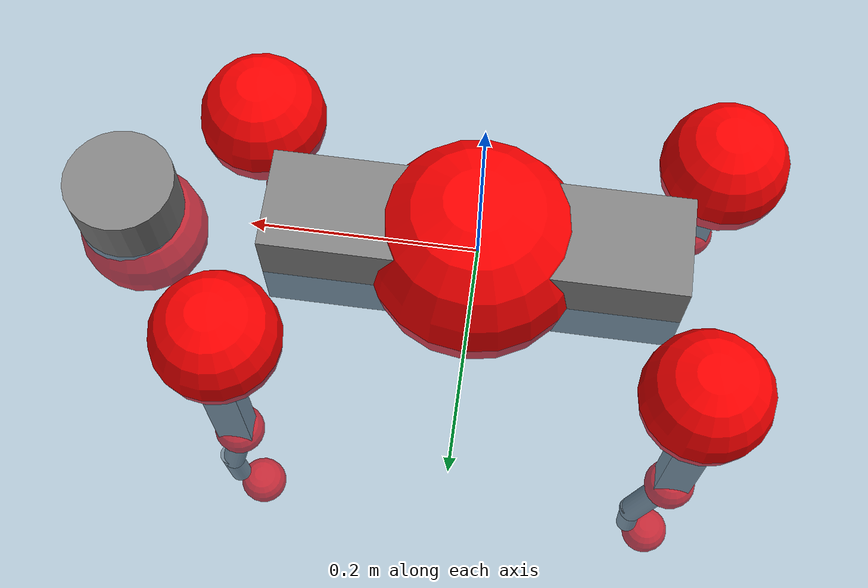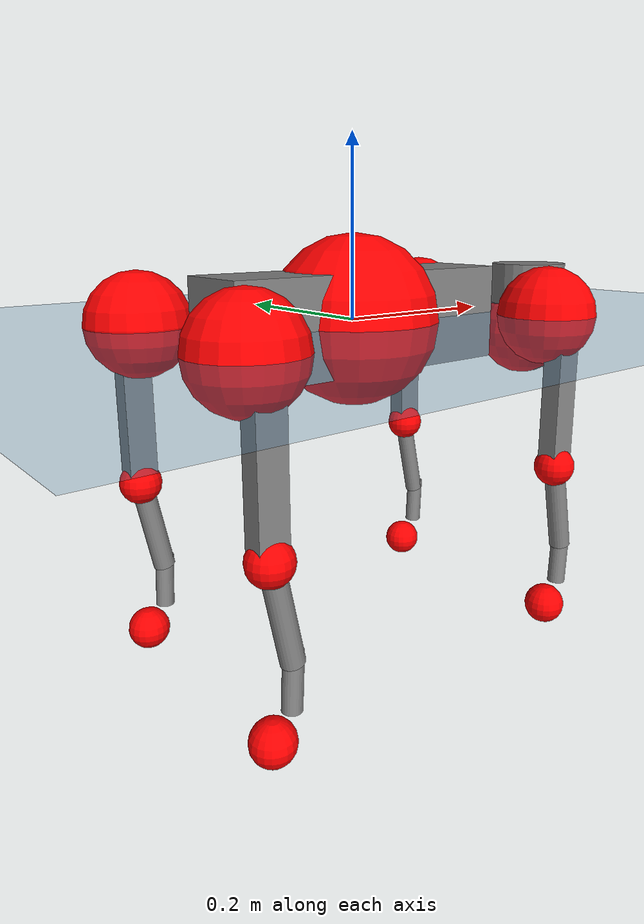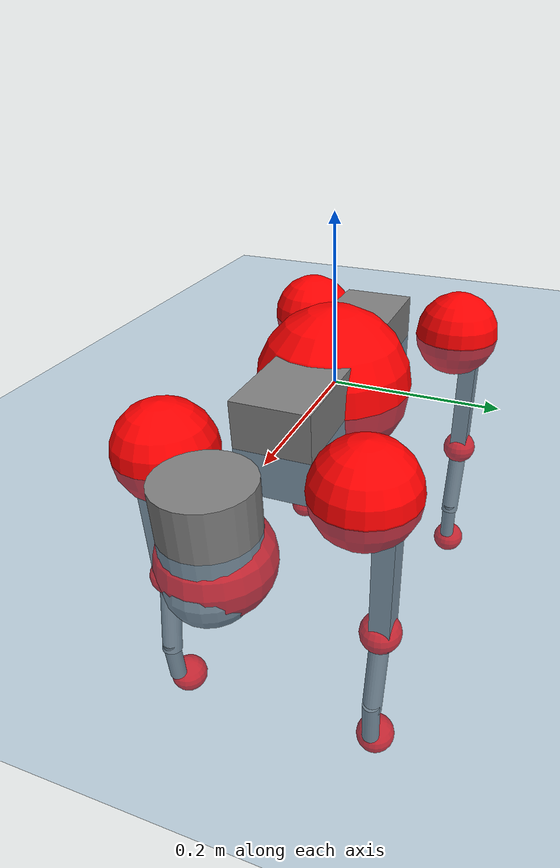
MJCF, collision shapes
<mujoco model="go2">
  <compiler angle="radian" assetdir="assets" balanceinertia="true" inertiafromgeom="false"/>

  <option timestep="0.005" density="1.2" viscosity="2e-05"/>

  <size nkey="1"/>

  <visual>
    <quality shadowsize="8192"/>
    <map shadowclip="0.5"/>
  </visual>

  <default>
    <default class="/">
      <geom contype="0" conaffinity="0" group="1" solref="-1000 -80"/>
      <site size="0.01 0.005 0.005" group="5"/>
      <general forcelimited="true" biastype="affine" gainprm="20" biasprm="0 -20 -0.5"/>
      <default class="go2">
        <joint armature="0.01" damping="0.01" frictionloss="0.2"/>
        <geom condim="1" margin="0.001"/>
        <default class="visual">
          <geom type="mesh" group="2"/>
        </default>
        <default class="collision">
          <geom group="3"/>
          <default class="foot">
            <geom size="0.022 0 0" condim="6" priority="1" friction="0.8 0.02 0.01" solimp="0.015 1 0.022"/>
          </default>
        </default>
        <default class="reward_collision_sphere">
          <geom group="5" rgba="1 0 0 1"/>
        </default>
      </default>
    </default>
  </default>

  <asset>
    <texture type="skybox" colorspace="auto" name="//unnamed_texture_0" builtin="gradient" rgb1="0.95 0.95 0.95" rgb2="0.95 0.95 0.95" width="100" height="600"/>
    <texture type="2d" colorspace="auto" name="texplane" builtin="checker" rgb1="0.345 0.575 0.748" rgb2="0.345 0.575 0.748" markrgb="1 1 1" width="512" height="512"/>
    <material name="MatPlane" class="/" texture="texplane" texuniform="true" texrepeat="2 2" specular="0.9"/>
    <material name="metal" class="/" rgba="0.9 0.95 0.95 1"/>
    <material name="black" class="/" rgba="0 0 0 1"/>
    <material name="white" class="/"/>
    <material name="gray" class="/" rgba="0.671705 0.692426 0.77427 1"/>
    <mesh name="base_0" class="/" file="base_0.obj"/>
    <mesh name="base_1" class="/" file="base_1.obj"/>
    <mesh name="base_2" class="/" file="base_2.obj"/>
    <mesh name="base_3" class="/" file="base_3.obj"/>
    <mesh name="base_4" class="/" file="base_4.obj"/>
    <mesh name="hip_0" class="/" file="hip_0.obj"/>
    <mesh name="hip_1" class="/" file="hip_1.obj"/>
    <mesh name="thigh_0" class="/" file="thigh_0.obj"/>
    <mesh name="thigh_1" class="/" file="thigh_1.obj"/>
    <mesh name="thigh_mirror_0" class="/" file="thigh_mirror_0.obj"/>
    <mesh name="thigh_mirror_1" class="/" file="thigh_mirror_1.obj"/>
    <mesh name="calf_0" class="/" file="calf_0.obj"/>
    <mesh name="calf_1" class="/" file="calf_1.obj"/>
    <mesh name="calf_mirror_0" class="/" file="calf_mirror_0.obj"/>
    <mesh name="calf_mirror_1" class="/" file="calf_mirror_1.obj"/>
    <mesh name="foot" class="/" file="foot.obj"/>
  </asset>

  <worldbody>
    <geom name="floor" class="/" size="100 100 0.125" type="plane" group="0" material="MatPlane"/>
    <light name="toplight_shadow" class="/" pos="0 0 5" dir="0.0990148 0.0990148 -0.990148" type="directional" ambient="0.04 0.04 0.04" diffuse="0.55 0.55 0.55" specular="0.12 0.12 0.12"/>
    <light name="toplight_fill" class="/" pos="0 0 5" dir="0.0990148 0.0990148 -0.990148" type="directional" castshadow="false" ambient="0.04 0.04 0.04" diffuse="0.3 0.3 0.3" specular="0.08 0.08 0.08"/>
    <body name="trunk" childclass="go2" pos="0.00137048 -0.000991216 -0.000261767" quat="1 6.88665e-05 7.87457e-05 -5.01426e-05">
      <inertial pos="0.0227378 -0.00049329 -0.0046882" quat="-0.00255293 0.715406 -0.00370408 0.698694" mass="6.03506" diaginertia="0.159601 0.07348 0.0114007"/>
      <joint name="//unnamed_joint_0" type="free" armature="0" damping="0" frictionloss="0"/>
      <geom name="//unnamed_geom_1" class="visual" material="black" mesh="base_0"/>
      <geom name="//unnamed_geom_2" class="visual" material="black" mesh="base_1"/>
      <geom name="//unnamed_geom_3" class="visual" material="black" mesh="base_2"/>
      <geom name="//unnamed_geom_4" class="visual" material="white" mesh="base_3"/>
      <geom name="//unnamed_geom_5" class="visual" material="gray" mesh="base_4"/>
      <geom name="trunk_1" class="collision" size="0.180435 0.0448449 0.0546773" type="box"/>
      <geom name="trunk_2" class="collision" size="0.0479625 0.0431663" pos="0.307 0 0.00857771" type="cylinder"/>
      <geom name="trunk_3" class="collision" size="0.0450848" pos="0.315617 0 -0.0514662"/>
      <geom name="//unnamed_geom_9" class="reward_collision_sphere" size="0.095925"/>
      <geom name="//unnamed_geom_10" class="reward_collision_sphere" size="0.057555" pos="0.301614 0 -0.0385997"/>
      <site name="imu" pos="-0.0299469 -0.00259158 0.0267417" size="0.0095925"/>
      <camera name="track" pos="0 -1.88557 0" quat="0.707107 0.707107 0 0" mode="trackcom"/>
      <camera name="ego_camera" pos="0.336084 0 0.0385997" quat="-0.5 -0.5 0.5 0.5"/>
      <body name="FL_hip" pos="0.208455 0.044935 0.00100194" quat="1 -0.00033573 -0.0003248 -3.9595e-05">
        <inertial pos="-0.0073115 0.0029525 0.000148119" quat="0.496167 0.499235 0.50575 0.498799" mass="0.600312" diaginertia="0.00128499 0.000444286 0.000222014"/>
        <joint name="FL_hip_joint" pos="0 0 0" axis="0.999901 0.00964019 -0.010238" range="-1.05503 1.04995" armature="0.00866421" damping="0.00720547" frictionloss="0.183025"/>
        <geom name="//unnamed_geom_11" class="visual" material="metal" mesh="hip_0"/>
        <geom name="//unnamed_geom_12" class="visual" material="gray" mesh="hip_1"/>
        <geom name="//unnamed_geom_13" class="collision" size="0.0441255 0.019185" pos="0 0.075423 0" quat="0.707107 0.707107 0 0" type="cylinder"/>
        <geom name="//unnamed_geom_14" class="reward_collision_sphere" size="0.057555" pos="0 0.0659951 0"/>
        <body name="FL_thigh" pos="-0.000355685 0.0908105 0.00120151" quat="1 0.000183267 8.56063e-05 0.000465647">
          <inertial pos="-0.00463059 -0.0209846 -0.029915" quat="0.82693 0.0867587 -0.0204539 0.555194" mass="1.02704" diaginertia="0.00868687 0.00439406 0.000414125"/>
          <joint name="FL_thigh_joint" pos="0 0 0" axis="-0.00346984 0.999985 0.00431026" range="-1.59063 3.49075" armature="0.0100533" damping="0.00651426" frictionloss="0.197893"/>
          <geom name="//unnamed_geom_15" class="visual" material="metal" mesh="thigh_0"/>
          <geom name="//unnamed_geom_16" class="visual" material="gray" mesh="thigh_1"/>
          <geom name="//unnamed_geom_17" class="collision" size="0.10216 0.0117508 0.0163073" pos="0 0 -0.0913526" quat="0.707107 0 0.707107 0" type="box"/>
          <body name="FL_calf" pos="-0.000400145 -0.00250717 -0.182924" quat="1 2.41143e-05 -1.38519e-05 -3.99883e-05">
            <inertial pos="0.00606704 -0.000629596 -0.121029" quat="0.705672 -0.00321501 -0.00415948 0.708519" mass="0.210392" diaginertia="0.00213626 0.00108627 2.42163e-05"/>
            <joint name="FL_calf_joint" pos="0 0 0" axis="0.000253021 0.999939 0.0110459" stiffness="0.00273738" range="-2.7211 -0.84548" armature="0.00967455" damping="0.00351032" frictionloss="0.196492"/>
            <geom name="//unnamed_geom_18" class="visual" material="gray" mesh="calf_0"/>
            <geom name="//unnamed_geom_19" class="visual" material="black" mesh="calf_1"/>
            <geom name="FL_calf0" class="collision" size="0.011511 0.057555" pos="0.00861754 0 -0.0514662" quat="0.994493 0 -0.104807 0" type="cylinder"/>
            <geom name="//unnamed_geom_21" class="collision" size="0.0105518 0.0311756" pos="0.0215439 0 -0.12695" quat="0.999688 0 0.0249974 0" type="cylinder"/>
            <geom name="//unnamed_geom_22" class="visual" pos="0 0 -0.182705" quat="1 0 0 0" material="black" mesh="foot"/>
            <geom name="FL_foot" class="foot" size="0.0181066" pos="-0.00215439 0 -0.182705"/>
            <geom name="//unnamed_geom_24" class="reward_collision_sphere" size="0.0239813"/>
            <geom name="//unnamed_geom_25" class="reward_collision_sphere" size="0.0239813" pos="-0.00215439 0 -0.182705"/>
            <site name="FL_foot" class="foot" pos="-0.00215439 0 -0.182705" size="0.0095925"/>
          </body>
        </body>
      </body>
      <body name="FR_hip" pos="0.207111 -0.0413022 -0.0011341" quat="1 -3.26794e-05 4.4955e-05 -0.000152931">
        <inertial pos="-0.00357514 -0.00234131 -0.00234189" quat="0.497017 0.506376 0.498222 0.49833" mass="0.615889" diaginertia="0.00130995 0.000455232 0.000228075"/>
        <joint name="FR_hip_joint" pos="0 0 0" axis="0.999991 -0.00250395 -0.00355155" stiffness="0.00531437" range="-1.08318 1.05971" armature="0.00971995" damping="0.0135639" frictionloss="0.18283"/>
        <geom name="//unnamed_geom_26" class="visual" pos="0 7.40629e-10 3.17671e-08" quat="4.63268e-05 1 0 0" material="metal" mesh="hip_0"/>
        <geom name="//unnamed_geom_27" class="visual" pos="0 1.20065e-09 -7.85722e-08" quat="4.63268e-05 1 0 0" material="gray" mesh="hip_1"/>
        <geom name="//unnamed_geom_28" class="collision" size="0.0441255 0.019185" pos="0 -0.075423 0" quat="0.707107 0.707107 0 0" type="cylinder"/>
        <geom name="//unnamed_geom_29" class="reward_collision_sphere" size="0.057555" pos="0 -0.0659951 0"/>
        <body name="FR_thigh" pos="0.000231859 -0.0905657 -9.34783e-05" quat="1 5.72113e-05 9.94898e-06 -8.39433e-05">
          <inertial pos="-0.00273232 0.0234267 -0.0285172" quat="0.551296 -0.020376 0.0841673 0.829803" mass="1.00719" diaginertia="0.00856476 0.00432861 0.000404374"/>
          <joint name="FR_thigh_joint" pos="0 0 0" axis="-0.000617145 -0.999998 0.00173169" range="-3.50271 1.5506" armature="0.00986626" damping="0.0111554" frictionloss="0.193584"/>
          <geom name="//unnamed_geom_30" class="visual" material="metal" mesh="thigh_mirror_0"/>
          <geom name="//unnamed_geom_31" class="visual" material="gray" mesh="thigh_mirror_1"/>
          <geom name="//unnamed_geom_32" class="collision" size="0.10216 0.0117508 0.0163073" pos="0 0 -0.0913526" quat="0.707107 0 0.707107 0" type="box"/>
          <body name="FR_calf" pos="-0.000225454 -0.000929958 -0.181596" quat="1 -0.000664641 0.00068413 -0.000288335">
            <inertial pos="0.00908493 0.00101019 -0.120715" quat="0.703278 -0.00528127 0.000402865 0.710896" mass="0.209232" diaginertia="0.00212533 0.00109909 2.51552e-05"/>
            <joint name="FR_calf_joint" pos="0 0 0" axis="-0.00165447 -0.999998 0.000820644" stiffness="0.00096186" range="0.798948 2.71957" armature="0.00985549" damping="0.0167105" frictionloss="0.204056"/>
            <geom name="//unnamed_geom_33" class="visual" material="gray" mesh="calf_mirror_0"/>
            <geom name="//unnamed_geom_34" class="visual" material="black" mesh="calf_mirror_1"/>
            <geom name="FR_calf0" class="collision" size="0.0124703 0.057555" pos="0.0107719 0 -0.0514662" quat="0.995004 0 -0.0998334 0" type="cylinder"/>
            <geom name="//unnamed_geom_36" class="collision" size="0.0105518 0.0311756" pos="0.0215439 0 -0.12695" quat="0.999688 0 0.0249974 0" type="cylinder"/>
            <geom name="//unnamed_geom_37" class="visual" pos="0 0 -0.182705" quat="1 0 0 0" material="black" mesh="foot"/>
            <geom name="FR_foot" class="foot" size="0.021811" pos="-0.00215439 0 -0.182705"/>
            <geom name="//unnamed_geom_39" class="reward_collision_sphere" size="0.0239813"/>
            <geom name="//unnamed_geom_40" class="reward_collision_sphere" size="0.0239813" pos="-0.00215439 0 -0.182705"/>
            <site name="FR_foot" class="foot" pos="-0.00215439 0 -0.182705" size="0.0095925"/>
          </body>
        </body>
      </body>
      <body name="RL_hip" pos="-0.206227 0.0433867 0.000911284" quat="1 8.68832e-06 -8.05774e-06 -2.24084e-06">
        <inertial pos="0.00755576 1.9661e-06 1.52558e-05" quat="0.504333 0.501489 0.492668 0.501433" mass="0.603851" diaginertia="0.0012855 0.00044186 0.000219237"/>
        <joint name="RL_hip_joint" pos="0 0 0" axis="-0.999864 0.0117728 0.0115425" range="-1.04835 1.0268" armature="0.0096065" damping="0.00775304" frictionloss="0.200243"/>
        <geom name="//unnamed_geom_41" class="visual" pos="-1.91151e-09 0 -3.74701e-07" quat="4.63268e-05 0 1 0" material="metal" mesh="hip_0"/>
        <geom name="//unnamed_geom_42" class="visual" pos="-3.09879e-09 0 -3.32306e-07" quat="4.63268e-05 0 1 0" material="gray" mesh="hip_1"/>
        <geom name="//unnamed_geom_43" class="collision" size="0.0441255 0.019185" pos="0 0.075423 0" quat="0.707107 0.707107 0 0" type="cylinder"/>
        <geom name="//unnamed_geom_44" class="reward_collision_sphere" size="0.057555" pos="0 0.0659951 0"/>
        <body name="RL_thigh" pos="-0.000605543 0.0888218 0.000732197" quat="1 -0.000143407 0.000429549 0.000137656">
          <inertial pos="-0.00393239 -0.0189214 -0.0280366" quat="0.829652 0.0863542 -0.0220242 0.551122" mass="1.01927" diaginertia="0.00865889 0.00436722 0.00039802"/>
          <joint name="RL_thigh_joint" pos="0 0 0" axis="0.00555403 0.999983 0.00191057" range="-0.524723 4.52604" armature="0.0104063" damping="0.00467238" frictionloss="0.201594"/>
          <geom name="//unnamed_geom_45" class="visual" material="metal" mesh="thigh_0"/>
          <geom name="//unnamed_geom_46" class="visual" material="gray" mesh="thigh_1"/>
          <geom name="//unnamed_geom_47" class="collision" size="0.10216 0.0117508 0.0163073" pos="0 0 -0.0913526" quat="0.707107 0 0.707107 0" type="box"/>
          <body name="RL_calf" pos="0.000110359 0.000539153 -0.184727" quat="1 -3.55054e-05 4.11624e-05 -0.000986549">
            <inertial pos="0.00724409 -0.000388733 -0.118924" quat="0.710318 -0.00125277 -0.00194971 0.703877" mass="0.209309" diaginertia="0.00217382 0.00110562 2.46184e-05"/>
            <joint name="RL_calf_joint" pos="0 0 0" axis="0.000320546 1 -0.000394952" stiffness="0.00303556" range="-2.7233 -0.8327" armature="0.00953862" damping="0.00530967" frictionloss="0.18649"/>
            <geom name="//unnamed_geom_48" class="visual" material="gray" mesh="calf_0"/>
            <geom name="//unnamed_geom_49" class="visual" material="black" mesh="calf_1"/>
            <geom name="RL_calf0" class="collision" size="0.0124703 0.057555" pos="0.0107719 0 -0.0514662" quat="0.995004 0 -0.0998334 0" type="cylinder"/>
            <geom name="//unnamed_geom_51" class="collision" size="0.0105518 0.0311756" pos="0.0215439 0 -0.12695" quat="0.999688 0 0.0249974 0" type="cylinder"/>
            <geom name="//unnamed_geom_52" class="visual" pos="0 0 -0.182705" quat="1 0 0 0" material="black" mesh="foot"/>
            <geom name="RL_foot" class="foot" size="0.017928" pos="-0.00215439 0 -0.182705"/>
            <geom name="//unnamed_geom_54" class="reward_collision_sphere" size="0.0239813"/>
            <geom name="//unnamed_geom_55" class="reward_collision_sphere" size="0.0239813" pos="-0.00215439 0 -0.182705"/>
            <site name="RL_foot" class="foot" pos="-0.00215439 0 -0.182705" size="0.0095925"/>
          </body>
        </body>
      </body>
      <body name="RR_hip" pos="-0.210209 -0.044988 -0.000655489" quat="1 0.000153101 7.40061e-05 0.000398602">
        <inertial pos="0.00575652 -0.00255744 -0.000142822" quat="0.492714 0.495372 0.50014 0.511565" mass="0.597161" diaginertia="0.00126776 0.000441178 0.000221036"/>
        <joint name="RR_hip_joint" pos="0 0 0" axis="-0.999941 0.00264589 -0.0105306" stiffness="0.00336827" range="-1.04766 1.03297" armature="0.00991667" damping="0" frictionloss="0.189057"/>
        <geom name="//unnamed_geom_56" class="visual" pos="1.90686e-09 7.40629e-10 -4.06468e-07" quat="2.14617e-09 4.63268e-05 4.63268e-05 -1" material="metal" mesh="hip_0"/>
        <geom name="//unnamed_geom_57" class="visual" pos="3.1103e-09 1.20065e-09 -2.53734e-07" quat="2.14617e-09 4.63268e-05 4.63268e-05 -1" material="gray" mesh="hip_1"/>
        <geom name="//unnamed_geom_58" class="collision" size="0.0441255 0.019185" pos="0 -0.075423 0" quat="0.707107 0.707107 0 0" type="cylinder"/>
        <geom name="//unnamed_geom_59" class="reward_collision_sphere" size="0.057555" pos="0 -0.0659951 0"/>
        <body name="RR_thigh" pos="0.000403316 -0.0896929 0.000166374" quat="1 5.95699e-05 0.000191595 0.00023247">
          <inertial pos="-0.0039656 0.0208954 -0.028709" quat="0.54655 -0.0128957 0.0904511 0.832428" mass="1.01818" diaginertia="0.00863053 0.00439221 0.000418537"/>
          <joint name="RR_thigh_joint" pos="0 0 0" axis="0.000312856 -1 -0.000337983" range="-4.53372 0.506559" armature="0.0100137" damping="0.0112785" frictionloss="0.200474"/>
          <geom name="//unnamed_geom_60" class="visual" material="metal" mesh="thigh_mirror_0"/>
          <geom name="//unnamed_geom_61" class="visual" material="gray" mesh="thigh_mirror_1"/>
          <geom name="//unnamed_geom_62" class="collision" size="0.10216 0.0117508 0.0163073" pos="0 0 -0.0913526" quat="0.707107 0 0.707107 0" type="box"/>
          <body name="RR_calf" pos="0.000712839 -0.00151411 -0.183555" quat="1 2.34469e-05 2.00605e-05 5.76306e-05">
            <inertial pos="0.00531827 -0.00138837 -0.119683" quat="0.703435 -0.00501128 0.0017502 0.71074" mass="0.214408" diaginertia="0.00215186 0.00109907 2.45219e-05"/>
            <joint name="RR_calf_joint" pos="0 0 0" axis="-0.00212831 -0.999979 0.00617906" range="0.856208 2.76166" armature="0.00957398" damping="0.0107786" frictionloss="0.209515"/>
            <geom name="//unnamed_geom_63" class="visual" material="gray" mesh="calf_mirror_0"/>
            <geom name="//unnamed_geom_64" class="visual" material="black" mesh="calf_mirror_1"/>
            <geom name="RR_calf0" class="collision" size="0.0124703 0.057555" pos="0.0107719 0 -0.0514662" quat="0.995004 0 -0.0998334 0" type="cylinder"/>
            <geom name="//unnamed_geom_66" class="collision" size="0.0105518 0.0311756" pos="0.0215439 0 -0.12695" quat="0.999688 0 0.0249974 0" type="cylinder"/>
            <geom name="//unnamed_geom_67" class="visual" pos="0 0 -0.182705" quat="1 0 0 0" material="black" mesh="foot"/>
            <geom name="RR_foot" class="foot" size="0.022658" pos="-0.00215439 0 -0.182705"/>
            <geom name="//unnamed_geom_69" class="reward_collision_sphere" size="0.0239813"/>
            <geom name="//unnamed_geom_70" class="reward_collision_sphere" size="0.0239813" pos="-0.00215439 0 -0.182705"/>
            <site name="RR_foot" class="foot" pos="-0.00215439 0 -0.182705" size="0.0095925"/>
          </body>
        </body>
      </body>
    </body>
  </worldbody>

  <contact>
    <pair class="/" geom1="floor" geom2="FL_foot" name="//unnamed_contact_0"/>
    <pair class="/" geom1="floor" geom2="FR_foot" name="//unnamed_contact_1"/>
    <pair class="/" geom1="floor" geom2="RL_foot" name="//unnamed_contact_2"/>
    <pair class="/" geom1="floor" geom2="RR_foot" name="//unnamed_contact_3"/>
  </contact>

  <actuator>
    <general name="FL_hip" class="/" joint="FL_hip_joint" forcerange="-22.7577 22.7577" gainprm="19.307" biasprm="0 -19.307 -0.47412"/>
    <general name="FL_thigh" class="/" joint="FL_thigh_joint" forcerange="-21.9159 21.9159" gainprm="19.307" biasprm="0 -19.307 -0.47412"/>
    <general name="FL_calf" class="/" joint="FL_calf_joint" forcerange="-41.9744 41.9744" gainprm="19.307" biasprm="0 -19.307 -0.47412"/>
    <general name="FR_hip" class="/" joint="FR_hip_joint" forcerange="-22.7421 22.7421" gainprm="19.307" biasprm="0 -19.307 -0.47412"/>
    <general name="FR_thigh" class="/" joint="FR_thigh_joint" forcerange="-23.1425 23.1425" gainprm="19.307" biasprm="0 -19.307 -0.47412"/>
    <general name="FR_calf" class="/" joint="FR_calf_joint" forcerange="-43.3367 43.3367" gainprm="19.307" biasprm="0 -19.307 -0.47412"/>
    <general name="RL_hip" class="/" joint="RL_hip_joint" forcerange="-22.6996 22.6996" gainprm="19.307" biasprm="0 -19.307 -0.47412"/>
    <general name="RL_thigh" class="/" joint="RL_thigh_joint" forcerange="-22.5394 22.5394" gainprm="19.307" biasprm="0 -19.307 -0.47412"/>
    <general name="RL_calf" class="/" joint="RL_calf_joint" forcerange="-45.0675 45.0675" gainprm="19.307" biasprm="0 -19.307 -0.47412"/>
    <general name="RR_hip" class="/" joint="RR_hip_joint" forcerange="-22.6704 22.6704" gainprm="19.307" biasprm="0 -19.307 -0.47412"/>
    <general name="RR_thigh" class="/" joint="RR_thigh_joint" forcerange="-22.1424 22.1424" gainprm="19.307" biasprm="0 -19.307 -0.47412"/>
    <general name="RR_calf" class="/" joint="RR_calf_joint" forcerange="-40.1787 40.1787" gainprm="19.307" biasprm="0 -19.307 -0.47412"/>
  </actuator>

  <sensor>
    <gyro site="imu" name="imu_angular_velocity"/>
    <velocimeter site="imu" name="imu_linear_velocity"/>
    <framelinvel objtype="site" objname="FL_foot" name="FL_foot_global_linear_velocity"/>
    <framelinvel objtype="site" objname="FR_foot" name="FR_foot_global_linear_velocity"/>
    <framelinvel objtype="site" objname="RL_foot" name="RL_foot_global_linear_velocity"/>
    <framelinvel objtype="site" objname="RR_foot" name="RR_foot_global_linear_velocity"/>
  </sensor>

  <keyframe>
    <key name="home" qpos="0 0 0.325 1 0 0 0 0.1 0.8 -1.5 -0.1 -0.8 1.5 -0.1 0.8 -1.5 0.1 -0.8 1.5"/>
  </keyframe>
</mujoco>
